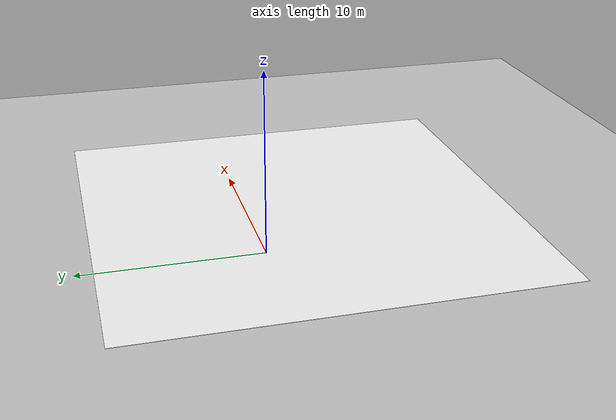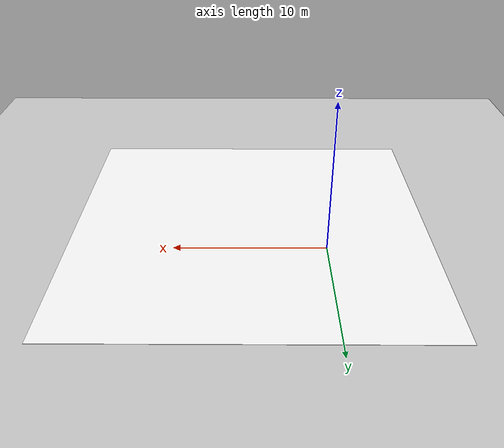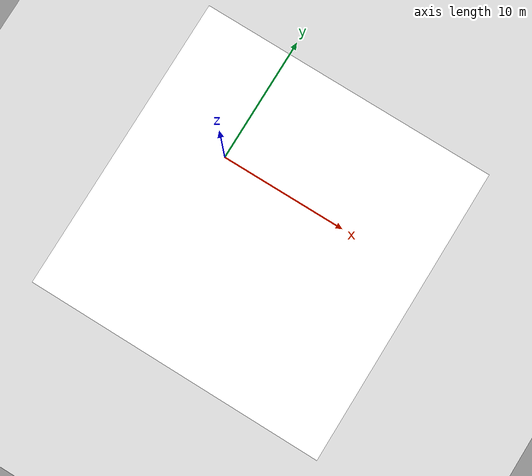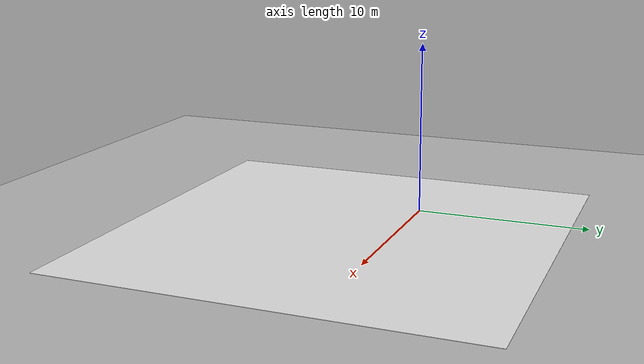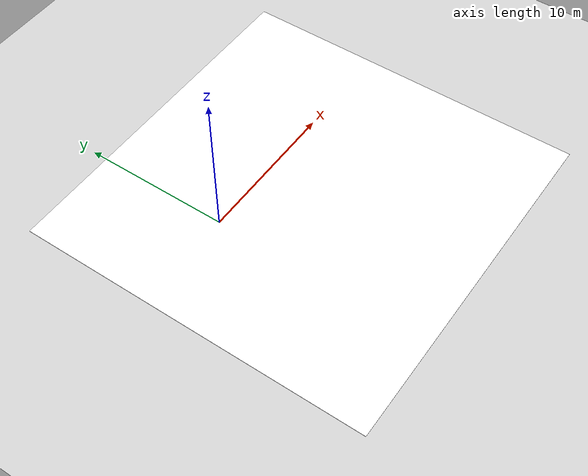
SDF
<sdf version="1.9">
 <world name="drone_tune">
  <physics name="4ms" type="ignored">
   <max_step_size>0.004</max_step_size>
   <real_time_factor>1.0</real_time_factor>
  </physics>
  <plugin filename="gz-sim-physics-system" name="gz::sim::systems::Physics"/>
  <plugin filename="gz-sim-scene-broadcaster-system" name="gz::sim::systems::SceneBroadcaster"/>
  <plugin filename="gz-sim-user-commands-system" name="gz::sim::systems::UserCommands"/>
  <plugin filename="gz-sim-sensors-system" name="gz::sim::systems::Sensors">
   <render_engine>ogre2</render_engine>
  </plugin>
  <scene>
   <ambient>0.65 0.65 0.65 1</ambient>
   <background>0.7 0.8 0.9 1</background>
   <shadows>true</shadows>
  </scene>
  <light type="directional" name="sun">
   <pose>0 0 10 0 0 0</pose>
   <diffuse>0.55 0.55 0.55 1</diffuse>
   <specular>0.2 0.2 0.2 1</specular>
   <attenuation>
    <range>1000</range>
    <constant>0.9</constant>
    <linear>0.01</linear>
    <quadratic>0.001</quadratic>
   </attenuation>
   <direction>-0.5 0.1 -0.9</direction>
  </light>
  <model name="ground_plane">
   <static>true</static>
   <link name="link">
    <collision name="collision">
     <geometry><plane><normal>0 0 1</normal><size>100 100</size></plane></geometry>
    </collision>
    <visual name="visual">
     <geometry><plane><normal>0 0 1</normal><size>100 100</size></plane></geometry>
     <material>
      <ambient>0.8 0.8 0.8 1</ambient>
      <diffuse>0.8 0.8 0.8 1</diffuse>
      <specular>0.8 0.8 0.8 1</specular>
     </material>
    </visual>
   </link>
  </model>
  <model name="ground_texture">
   <static>true</static>
   <pose>5 -3 0.001 0 0 0</pose>
   <link name="link">
    <visual name="visual">
     <geometry><plane><normal>0 0 1</normal><size>24 24</size></plane></geometry>
     <material>
      <ambient>1 1 1 1</ambient>
      <diffuse>1 1 1 1</diffuse>
      <specular>0 0 0 1</specular>
      <pbr>
       <metal>
        <albedo_map>textures/ground.png</albedo_map>
        <roughness>1.0</roughness>
        <metalness>0.0</metalness>
       </metal>
      </pbr>
     </material>
    </visual>
   </link>
  </model>
  <model name="pad_home">
   <static>true</static>
   <pose>0 0 0.005 0 0 0</pose>
   <link name="link">
    <visual name="visual">
     <pose>0.06 0 0 0 0 0</pose>
     <geometry><box><size>0.42 0.297 0.01</size></box></geometry>
     <material><ambient>0.95 0.95 0.95 1</ambient><diffuse>0.95 0.95 0.95 1</diffuse></material>
    </visual>
    <visual name="tag_to">
     <pose>0 0 0.0055 0 0 -1.5708</pose>
     <geometry><plane><normal>0 0 1</normal><size>0.3125 0.3125</size></plane></geometry>
     <material>
      <ambient>1 1 1 1</ambient>
      <diffuse>1 1 1 1</diffuse>
      <specular>0 0 0 1</specular>
      <pbr>
       <metal>
        <albedo_map>textures/tag36h11_00.png</albedo_map>
        <roughness>1.0</roughness>
        <metalness>0.0</metalness>
       </metal>
      </pbr>
     </material>
    </visual>
    <visual name="tag_nho">
     <pose>0.21 0 0.0055 0 0 -1.5708</pose>
     <geometry><plane><normal>0 0 1</normal><size>0.125 0.125</size></plane></geometry>
     <material>
      <ambient>1 1 1 1</ambient>
      <diffuse>1 1 1 1</diffuse>
      <specular>0 0 0 1</specular>
      <pbr>
       <metal>
        <albedo_map>textures/tag36h11_10.png</albedo_map>
        <roughness>1.0</roughness>
        <metalness>0.0</metalness>
       </metal>
      </pbr>
     </material>
    </visual>
   </link>
  </model>
  <model name="pad_a">
   <static>true</static>
   <pose>10 0 0.005 0 0 1.5708</pose>
   <link name="link">
    <visual name="visual">
     <pose>0.06 0 0 0 0 0</pose>
     <geometry><box><size>0.42 0.297 0.01</size></box></geometry>
     <material><ambient>0.95 0.95 0.95 1</ambient><diffuse>0.95 0.95 0.95 1</diffuse></material>
    </visual>
    <visual name="tag_to">
     <pose>0 0 0.0055 0 0 -1.5708</pose>
     <geometry><plane><normal>0 0 1</normal><size>0.3125 0.3125</size></plane></geometry>
     <material>
      <ambient>1 1 1 1</ambient>
      <diffuse>1 1 1 1</diffuse>
      <specular>0 0 0 1</specular>
      <pbr>
       <metal>
        <albedo_map>textures/tag36h11_01.png</albedo_map>
        <roughness>1.0</roughness>
        <metalness>0.0</metalness>
       </metal>
      </pbr>
     </material>
    </visual>
    <visual name="tag_nho">
     <pose>0.21 0 0.0055 0 0 -1.5708</pose>
     <geometry><plane><normal>0 0 1</normal><size>0.125 0.125</size></plane></geometry>
     <material>
      <ambient>1 1 1 1</ambient>
      <diffuse>1 1 1 1</diffuse>
      <specular>0 0 0 1</specular>
      <pbr>
       <metal>
        <albedo_map>textures/tag36h11_11.png</albedo_map>
        <roughness>1.0</roughness>
        <metalness>0.0</metalness>
       </metal>
      </pbr>
     </material>
    </visual>
   </link>
  </model>
  <model name="pad_b">
   <static>true</static>
   <pose>5 -6 0.005 0 0 -1.5708</pose>
   <link name="link">
    <visual name="visual">
     <pose>0.06 0 0 0 0 0</pose>
     <geometry><box><size>0.42 0.297 0.01</size></box></geometry>
     <material><ambient>0.95 0.95 0.95 1</ambient><diffuse>0.95 0.95 0.95 1</diffuse></material>
    </visual>
    <visual name="tag_to">
     <pose>0 0 0.0055 0 0 -1.5708</pose>
     <geometry><plane><normal>0 0 1</normal><size>0.3125 0.3125</size></plane></geometry>
     <material>
      <ambient>1 1 1 1</ambient>
      <diffuse>1 1 1 1</diffuse>
      <specular>0 0 0 1</specular>
      <pbr>
       <metal>
        <albedo_map>textures/tag36h11_02.png</albedo_map>
        <roughness>1.0</roughness>
        <metalness>0.0</metalness>
       </metal>
      </pbr>
     </material>
    </visual>
    <visual name="tag_nho">
     <pose>0.21 0 0.0055 0 0 -1.5708</pose>
     <geometry><plane><normal>0 0 1</normal><size>0.125 0.125</size></plane></geometry>
     <material>
      <ambient>1 1 1 1</ambient>
      <diffuse>1 1 1 1</diffuse>
      <specular>0 0 0 1</specular>
      <pbr>
       <metal>
        <albedo_map>textures/tag36h11_12.png</albedo_map>
        <roughness>1.0</roughness>
        <metalness>0.0</metalness>
       </metal>
      </pbr>
     </material>
    </visual>
   </link>
  </model>
 </world>
</sdf>
